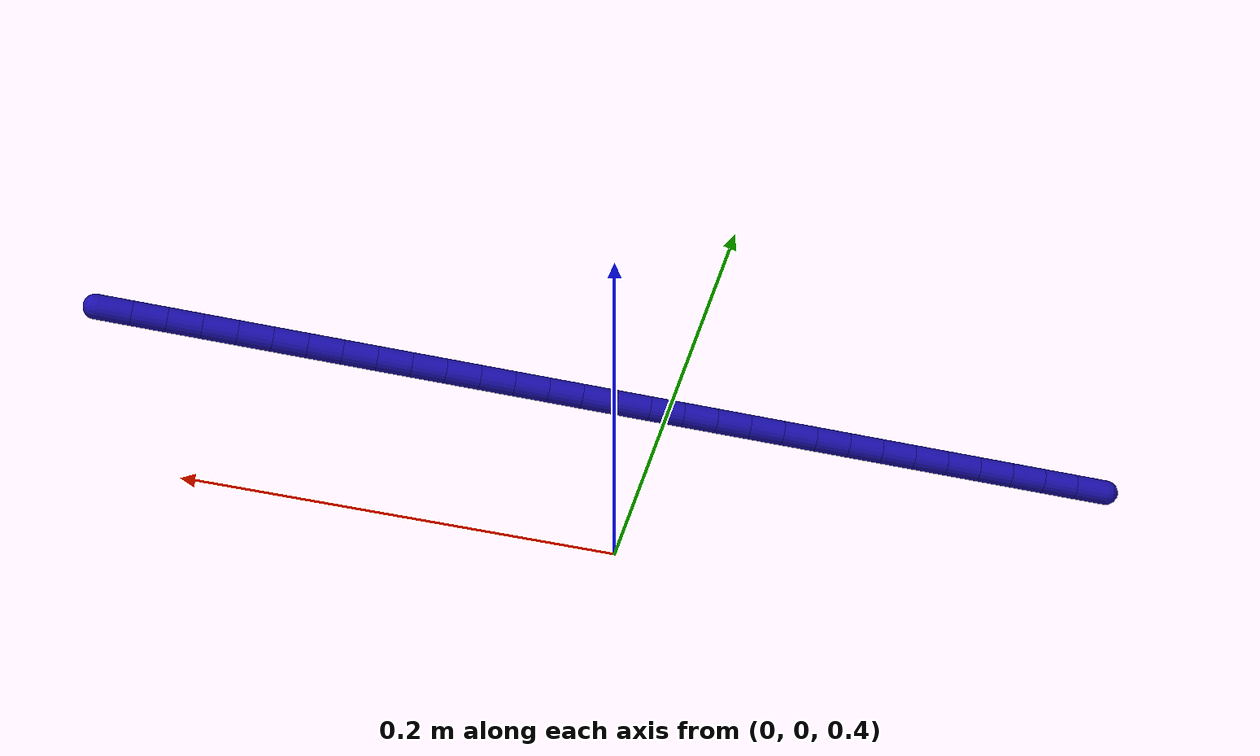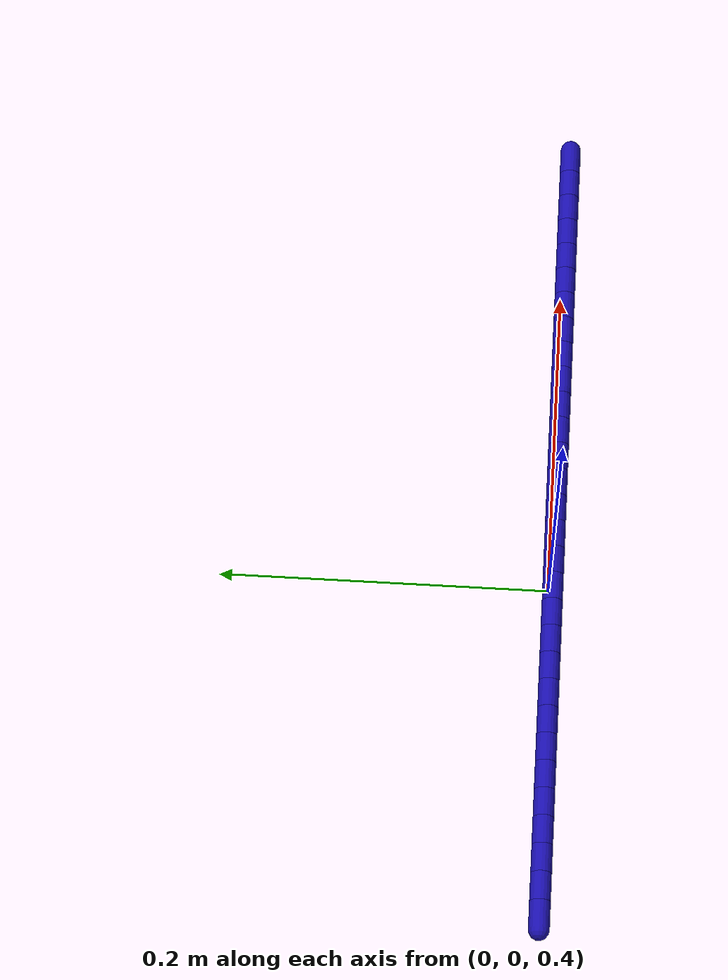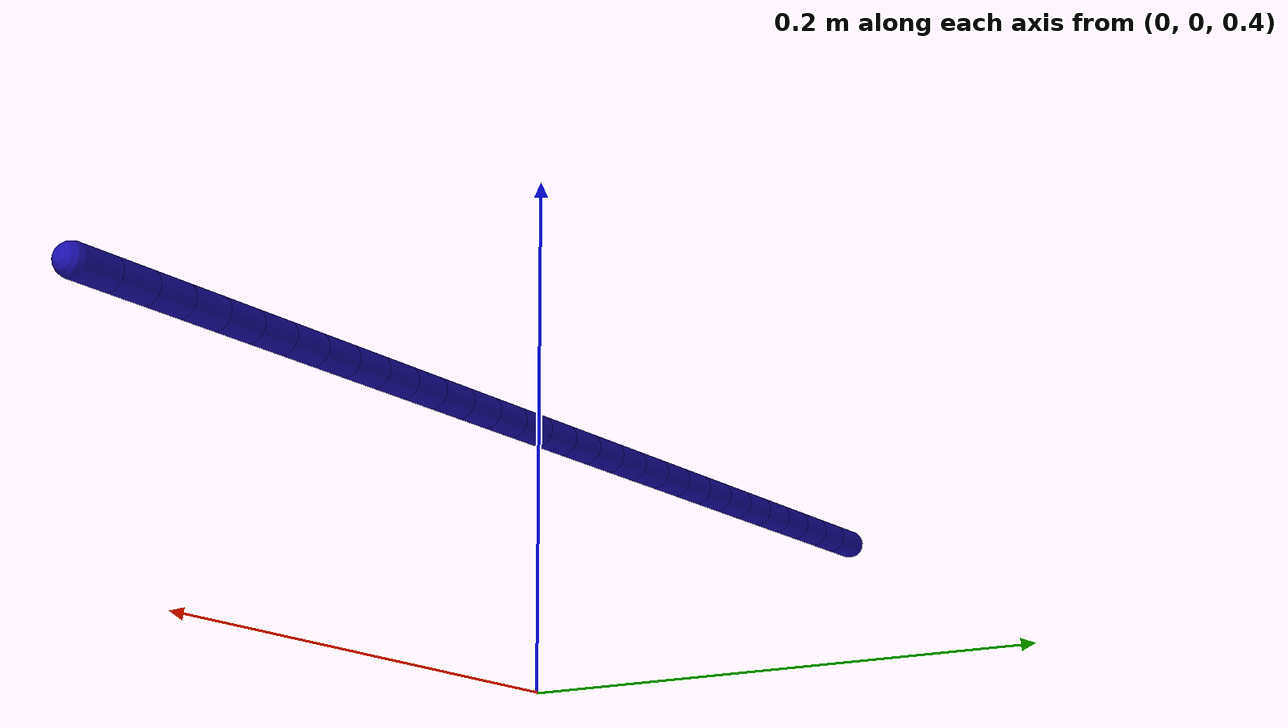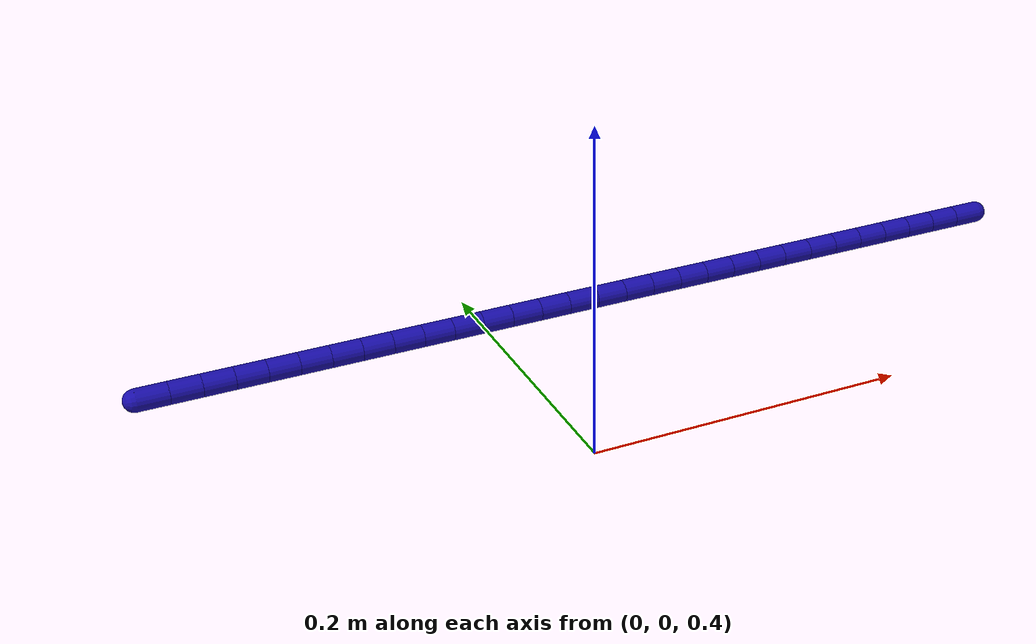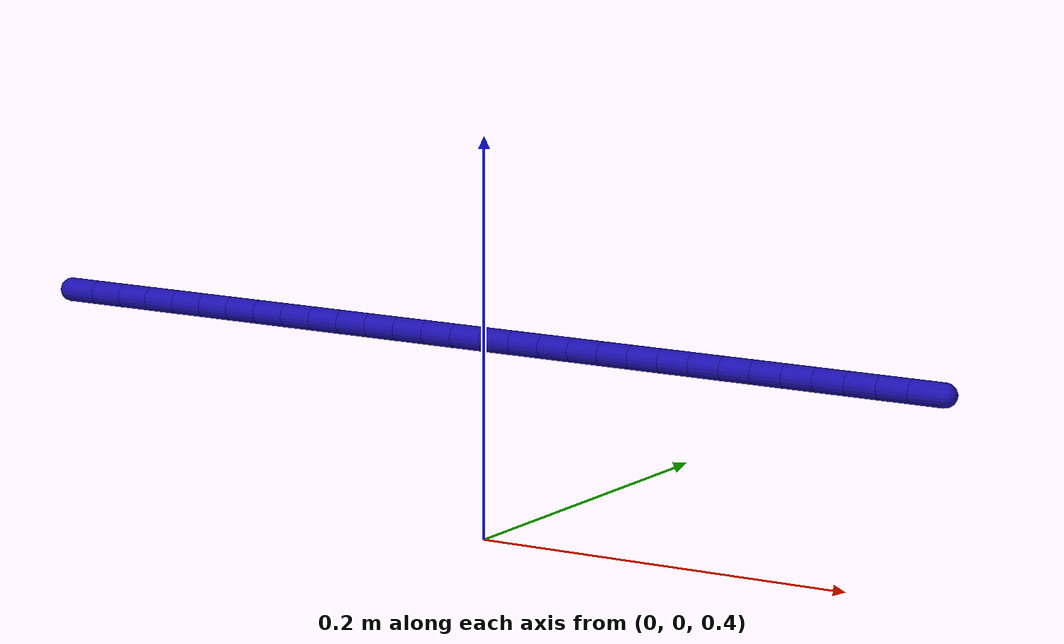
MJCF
<mujoco model="stiff-rope">
<!-- Texture Assets -->
    <asset>
        <texture type="skybox" builtin="gradient" rgb1="0.3 0.5 0.7" rgb2="0 0 0" width="512" height="3072"/>
        <texture type="2d" name="groundplane" builtin="checker" mark="edge" rgb1="0.2 0.3 0.4" rgb2="0.1 0.2 0.3"
                    markrgb="0.8 0.8 0.8" width="300" height="300"/>
        <material name="groundplane" texture="groundplane" texuniform="true" texrepeat="5 5" reflectance="0.2"/>

    </asset>
  <compiler angle="radian" />

  <extension>
    <plugin plugin="mujoco.elasticity.cable">
      <instance name="composite">
        <config key="twist" value="859195.0347674177" />
        <config key="bend" value="1175438.4977980438" />
        <config key="twist_displace" value="0.0" />
      </instance>
    </plugin>
  </extension>

  <custom>
    <text name="composite_" data="wire_" />
  </custom>

  <worldbody>
    <body name="stiffrope" pos="0.25 0 0.5" quat="0 0 1 0">
      <joint name="freejoint_A" type="free" limited="false" actuatorfrclimited="false" />
      <body name="B_first">
        <geom name="G0" size="0.006 0.00833333" pos="0.00833333 0 0" quat="0.707107 0 -0.707107 0" type="capsule" contype="0" conaffinity="0" condim="1" solref="0.001" mass="0.000441834" rgba="0.1 0.0533333 0.673333 1" />
        <site name="S_first" pos="0 0 0" group="3" />
        <plugin instance="composite" />
        <body name="B_1" pos="0.0166667 0 0">
          <joint name="J_1" pos="0 0 0" type="ball" group="3" actuatorfrclimited="false" damping="0.1" />
          <geom name="G1" size="0.006 0.00833333" pos="0.00833333 0 0" quat="0.707107 0 -0.707107 0" type="capsule" contype="0" conaffinity="0" condim="1" solref="0.001" mass="0.000441834" rgba="0.1 0.0533333 0.673333 1" />
          <plugin instance="composite" />
          <body name="B_2" pos="0.0166667 0 0">
            <joint name="J_2" pos="0 0 0" type="ball" group="3" actuatorfrclimited="false" damping="0.1" />
            <geom name="G2" size="0.006 0.00833333" pos="0.00833333 0 0" quat="0.707107 0 -0.707107 0" type="capsule" contype="0" conaffinity="0" condim="1" solref="0.001" mass="0.000441834" rgba="0.1 0.0533333 0.673333 1" />
            <plugin instance="composite" />
            <body name="B_3" pos="0.0166667 0 0">
              <joint name="J_3" pos="0 0 0" type="ball" group="3" actuatorfrclimited="false" damping="0.1" />
              <geom name="G3" size="0.006 0.00833333" pos="0.00833333 0 0" quat="0.707107 0 -0.707107 0" type="capsule" contype="0" conaffinity="0" condim="1" solref="0.001" mass="0.000441834" rgba="0.1 0.0533333 0.673333 1" />
              <plugin instance="composite" />
              <body name="B_4" pos="0.0166667 0 0">
                <joint name="J_4" pos="0 0 0" type="ball" group="3" actuatorfrclimited="false" damping="0.1" />
                <geom name="G4" size="0.006 0.00833333" pos="0.00833333 0 0" quat="0.707107 0 -0.707107 0" type="capsule" contype="0" conaffinity="0" condim="1" solref="0.001" mass="0.000441834" rgba="0.1 0.0533333 0.673333 1" />
                <plugin instance="composite" />
                <body name="B_5" pos="0.0166667 0 0">
                  <joint name="J_5" pos="0 0 0" type="ball" group="3" actuatorfrclimited="false" damping="0.1" />
                  <geom name="G5" size="0.006 0.00833333" pos="0.00833333 0 0" quat="0.707107 0 -0.707107 0" type="capsule" contype="0" conaffinity="0" condim="1" solref="0.001" mass="0.000441834" rgba="0.1 0.0533333 0.673333 1" />
                  <plugin instance="composite" />
                  <body name="B_6" pos="0.0166667 0 0">
                    <joint name="J_6" pos="0 0 0" type="ball" group="3" actuatorfrclimited="false" damping="0.1" />
                    <geom name="G6" size="0.006 0.00833333" pos="0.00833333 0 0" quat="0.707107 0 -0.707107 0" type="capsule" contype="0" conaffinity="0" condim="1" solref="0.001" mass="0.000441834" rgba="0.1 0.0533333 0.673333 1" />
                    <plugin instance="composite" />
                    <body name="B_7" pos="0.0166667 0 0">
                      <joint name="J_7" pos="0 0 0" type="ball" group="3" actuatorfrclimited="false" damping="0.1" />
                      <geom name="G7" size="0.006 0.00833334" pos="0.00833334 0 0" quat="0.707107 0 -0.707107 0" type="capsule" contype="0" conaffinity="0" condim="1" solref="0.001" mass="0.000441834" rgba="0.1 0.0533333 0.673333 1" />
                      <plugin instance="composite" />
                      <body name="B_8" pos="0.0166667 0 0">
                        <site name="S_8" pos="1 0 0" group="3"/>
<joint name="J_8" pos="0 0 0" type="ball" group="3" actuatorfrclimited="false" damping="0.1" />
                        <geom name="G8" size="0.006 0.00833333" pos="0.00833333 0 0" quat="0.707107 0 -0.707107 0" type="capsule" contype="0" conaffinity="0" condim="1" solref="0.001" mass="0.000441834" rgba="0.1 0.0533333 0.673333 1" />
                        <plugin instance="composite" />
                        <body name="B_9" pos="0.0166667 0 0">
                          <joint name="J_9" pos="0 0 0" type="ball" group="3" actuatorfrclimited="false" damping="0.1" />
                          <geom name="G9" size="0.006 0.00833333" pos="0.00833333 0 0" quat="0.707107 0 -0.707107 0" type="capsule" contype="0" conaffinity="0" condim="1" solref="0.001" mass="0.000441834" rgba="0.1 0.0533333 0.673333 1" />
                          <plugin instance="composite" />
                          <body name="B_10" pos="0.0166667 0 0">
                            <site name="S_10" pos="1 0 0" group="3" />
<joint name="J_10" pos="0 0 0" type="ball" group="3" actuatorfrclimited="false" damping="0.1" />
                            <geom name="G10" size="0.006 0.00833333" pos="0.00833333 0 0" quat="0.707107 0 -0.707107 0" type="capsule" contype="0" conaffinity="0" condim="1" solref="0.001" mass="0.000441834" rgba="0.1 0.0533333 0.673333 1" />
                            <plugin instance="composite" />
                            <body name="B_11" pos="0.0166667 0 0">
                              <joint name="J_11" pos="0 0 0" type="ball" group="3" actuatorfrclimited="false" damping="0.1" />
                              <geom name="G11" size="0.006 0.00833333" pos="0.00833333 0 0" quat="0.707107 0 -0.707107 0" type="capsule" contype="0" conaffinity="0" condim="1" solref="0.001" mass="0.000441834" rgba="0.1 0.0533333 0.673333 1" />
                              <plugin instance="composite" />
                              <body name="B_12" pos="0.0166667 0 0">
                                <joint name="J_12" pos="0 0 0" type="ball" group="3" actuatorfrclimited="false" damping="0.1" />
                                <geom name="G12" size="0.006 0.00833333" pos="0.00833333 0 0" quat="0.707107 0 -0.707107 0" type="capsule" contype="0" conaffinity="0" condim="1" solref="0.001" mass="0.000441834" rgba="0.1 0.0533333 0.673333 1" />
                                <plugin instance="composite" />
                                <body name="B_13" pos="0.0166667 0 0">
                                  <joint name="J_13" pos="0 0 0" type="ball" group="3" actuatorfrclimited="false" damping="0.1" />
                                  <geom name="G13" size="0.006 0.00833333" pos="0.00833333 0 0" quat="0.707107 0 -0.707107 0" type="capsule" contype="0" conaffinity="0" condim="1" solref="0.001" mass="0.000441834" rgba="0.1 0.0533333 0.673333 1" />
                                  <plugin instance="composite" />
                                  <body name="B_14" pos="0.0166667 0 0">
                                    <joint name="J_14" pos="0 0 0" type="ball" group="3" actuatorfrclimited="false" damping="0.1" />
                                    <geom name="G14" size="0.006 0.00833333" pos="0.00833333 0 0" quat="0.707107 0 -0.707107 0" type="capsule" contype="0" conaffinity="0" condim="1" solref="0.001" mass="0.000441834" rgba="0.1 0.0533333 0.673333 1" />
                                    <plugin instance="composite" />
                                    <body name="B_15" pos="0.0166667 0 0">
                                      <joint name="J_15" pos="0 0 0" type="ball" group="3" actuatorfrclimited="false" damping="0.1" />
                                      <geom name="G15" size="0.006 0.00833334" pos="0.00833334 0 0" quat="0.707107 0 -0.707107 0" type="capsule" contype="0" conaffinity="0" condim="1" solref="0.001" mass="0.000441834" rgba="0.1 0.0533333 0.673333 1" />
                                      <plugin instance="composite" />
                                      <body name="B_16" pos="0.0166667 0 0">
                                        <joint name="J_16" pos="0 0 0" type="ball" group="3" actuatorfrclimited="false" damping="0.1" />
                                        <geom name="G16" size="0.006 0.00833333" pos="0.00833333 0 0" quat="0.707107 0 -0.707107 0" type="capsule" contype="0" conaffinity="0" condim="1" solref="0.001" mass="0.000441834" rgba="0.1 0.0533333 0.673333 1" />
                                        <plugin instance="composite" />
                                        <body name="B_17" pos="0.0166667 0 0">
                                          <joint name="J_17" pos="0 0 0" type="ball" group="3" actuatorfrclimited="false" damping="0.1" />
                                          <geom name="G17" size="0.006 0.00833334" pos="0.00833334 0 0" quat="0.707107 0 -0.707107 0" type="capsule" contype="0" conaffinity="0" condim="1" solref="0.001" mass="0.000441834" rgba="0.1 0.0533333 0.673333 1" />
                                          <plugin instance="composite" />
                                          <body name="B_18" pos="0.0166667 0 0">
                                            <joint name="J_18" pos="0 0 0" type="ball" group="3" actuatorfrclimited="false" damping="0.1" />
                                            <geom name="G18" size="0.006 0.00833333" pos="0.00833333 0 0" quat="0.707107 0 -0.707107 0" type="capsule" contype="0" conaffinity="0" condim="1" solref="0.001" mass="0.000441834" rgba="0.1 0.0533333 0.673333 1" />
                                            <plugin instance="composite" />
                                            <body name="B_19" pos="0.0166667 0 0">
                                              <joint name="J_19" pos="0 0 0" type="ball" group="3" actuatorfrclimited="false" damping="0.1" />
                                              <geom name="G19" size="0.006 0.00833334" pos="0.00833334 0 0" quat="0.707107 0 -0.707107 0" type="capsule" contype="0" conaffinity="0" condim="1" solref="0.001" mass="0.000441834" rgba="0.1 0.0533333 0.673333 1" />
                                              <plugin instance="composite" />
                                              <body name="B_20" pos="0.0166667 0 0">
                                                <joint name="J_20" pos="0 0 0" type="ball" group="3" actuatorfrclimited="false" damping="0.1" />
                                                <geom name="G20" size="0.006 0.00833333" pos="0.00833333 0 0" quat="0.707107 0 -0.707107 0" type="capsule" contype="0" conaffinity="0" condim="1" solref="0.001" mass="0.000441834" rgba="0.1 0.0533333 0.673333 1" />
                                                <plugin instance="composite" />
                                                <body name="B_21" pos="0.0166667 0 0">
                                                  <joint name="J_21" pos="0 0 0" type="ball" group="3" actuatorfrclimited="false" damping="0.1" />
                                                  <geom name="G21" size="0.006 0.00833334" pos="0.00833334 0 0" quat="0.707107 0 -0.707107 0" type="capsule" contype="0" conaffinity="0" condim="1" solref="0.001" mass="0.000441834" rgba="0.1 0.0533333 0.673333 1" />
                                                  <plugin instance="composite" />
                                                  <body name="B_22" pos="0.0166667 0 0">
                                                    <joint name="J_22" pos="0 0 0" type="ball" group="3" actuatorfrclimited="false" damping="0.1" />
                                                    <geom name="G22" size="0.006 0.00833333" pos="0.00833333 0 0" quat="0.707107 0 -0.707107 0" type="capsule" contype="0" conaffinity="0" condim="1" solref="0.001" mass="0.000441834" rgba="0.1 0.0533333 0.673333 1" />
                                                    <plugin instance="composite" />
                                                    <body name="B_23" pos="0.0166667 0 0">
                                                      <joint name="J_23" pos="0 0 0" type="ball" group="3" actuatorfrclimited="false" damping="0.1" />
                                                      <geom name="G23" size="0.006 0.00833334" pos="0.00833334 0 0" quat="0.707107 0 -0.707107 0" type="capsule" contype="0" conaffinity="0" condim="1" solref="0.001" mass="0.000441834" rgba="0.1 0.0533333 0.673333 1" />
                                                      <plugin instance="composite" />
                                                      <body name="B_24" pos="0.0166667 0 0">
                                                        <joint name="J_24" pos="0 0 0" type="ball" group="3" actuatorfrclimited="false" damping="0.1" />
                                                        <geom name="G24" size="0.006 0.00833333" pos="0.00833333 0 0" quat="0.707107 0 -0.707107 0" type="capsule" contype="0" conaffinity="0" condim="1" solref="0.001" mass="0.000441834" rgba="0.1 0.0533333 0.673333 1" />
                                                        <plugin instance="composite" />
                                                        <body name="B_25" pos="0.0166667 0 0">
                                                          <joint name="J_25" pos="0 0 0" type="ball" group="3" actuatorfrclimited="false" damping="0.1" />
                                                          <geom name="G25" size="0.006 0.00833334" pos="0.00833334 0 0" quat="0.707107 0 -0.707107 0" type="capsule" contype="0" conaffinity="0" condim="1" solref="0.001" mass="0.000441834" rgba="0.1 0.0533333 0.673333 1" />
                                                          <plugin instance="composite" />
                                                          <body name="B_26" pos="0.0166667 0 0">
                                                            <joint name="J_26" pos="0 0 0" type="ball" group="3" actuatorfrclimited="false" damping="0.1" />
                                                            <geom name="G26" size="0.006 0.00833333" pos="0.00833333 0 0" quat="0.707107 0 -0.707107 0" type="capsule" contype="0" conaffinity="0" condim="1" solref="0.001" mass="0.000441834" rgba="0.1 0.0533333 0.673333 1" />
                                                            <plugin instance="composite" />
                                                            <body name="B_27" pos="0.0166667 0 0">
                                                              <joint name="J_27" pos="0 0 0" type="ball" group="3" actuatorfrclimited="false" damping="0.1" />
                                                              <geom name="G27" size="0.006 0.00833334" pos="0.00833334 0 0" quat="0.707107 0 -0.707107 0" type="capsule" contype="0" conaffinity="0" condim="1" solref="0.001" mass="0.000441834" rgba="0.1 0.0533333 0.673333 1" />
                                                              <plugin instance="composite" />
                                                              <body name="B_28" pos="0.0166667 0 0">
                                                                <joint name="J_28" pos="0 0 0" type="ball" group="3" actuatorfrclimited="false" damping="0.1" />
                                                                <geom name="G28" size="0.006 0.00833333" pos="0.00833333 0 0" quat="0.707107 0 -0.707107 0" type="capsule" contype="0" conaffinity="0" condim="1" solref="0.001" mass="0.000441834" rgba="0.1 0.0533333 0.673333 1" />
                                                                <plugin instance="composite" />
                                                                <body name="B_last" pos="0.0166667 0 0">
                                                                  <joint name="J_last" pos="0 0 0" type="ball" group="3" actuatorfrclimited="false" damping="0.1" />
                                                                  <geom name="G29" size="0.006 0.00833334" pos="0.00833334 0 0" quat="0.707107 0 -0.707107 0" type="capsule" contype="0" conaffinity="0" condim="1" solref="0.001" mass="0.000441834" rgba="0.1 0.0533333 0.673333 1" />
                                                                  <site name="S_last" pos="0.0166667 0 0" group="3" />
                                                                  <plugin instance="composite" />
                                                                  <body name="B_last2" pos="0.0166667 0 0">
                                                                    <plugin instance="composite" />
                                                                  </body>
                                                                </body>
                                                              </body>
                                                            </body>
                                                          </body>
                                                        </body>
                                                      </body>
                                                    </body>
                                                  </body>
                                                </body>
                                              </body>
                                            </body>
                                          </body>
                                        </body>
                                      </body>
                                    </body>
                                  </body>
                                </body>
                              </body>
                            </body>
                          </body>
                        </body>
                      </body>
                    </body>
                  </body>
                </body>
              </body>
            </body>
          </body>
        </body>
      </body>
    </body>
  </worldbody>

  <contact>
    <exclude body1="B_first" body2="B_1" />
    <exclude body1="B_1" body2="B_2" />
    <exclude body1="B_2" body2="B_3" />
    <exclude body1="B_3" body2="B_4" />
    <exclude body1="B_4" body2="B_5" />
    <exclude body1="B_5" body2="B_6" />
    <exclude body1="B_6" body2="B_7" />
    <exclude body1="B_7" body2="B_8" />
    <exclude body1="B_8" body2="B_9" />
    <exclude body1="B_9" body2="B_10" />
    <exclude body1="B_10" body2="B_11" />
    <exclude body1="B_11" body2="B_12" />
    <exclude body1="B_12" body2="B_13" />
    <exclude body1="B_13" body2="B_14" />
    <exclude body1="B_14" body2="B_15" />
    <exclude body1="B_15" body2="B_16" />
    <exclude body1="B_16" body2="B_17" />
    <exclude body1="B_17" body2="B_18" />
    <exclude body1="B_18" body2="B_19" />
    <exclude body1="B_19" body2="B_20" />
    <exclude body1="B_20" body2="B_21" />
    <exclude body1="B_21" body2="B_22" />
    <exclude body1="B_22" body2="B_23" />
    <exclude body1="B_23" body2="B_24" />
    <exclude body1="B_24" body2="B_25" />
    <exclude body1="B_25" body2="B_26" />
    <exclude body1="B_26" body2="B_27" />
    <exclude body1="B_27" body2="B_28" />
    <exclude body1="B_28" body2="B_last" />
  </contact>
</mujoco>
